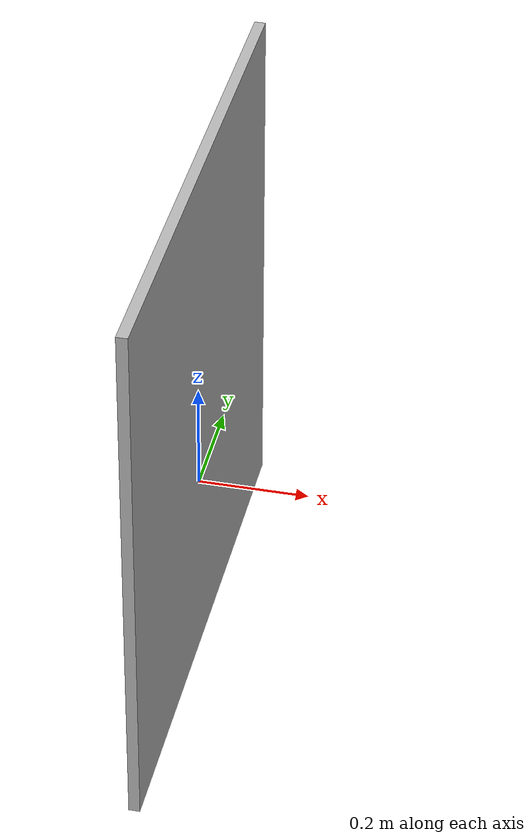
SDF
<?xml version="1.0"?>
<sdf version="1.6">
  <model name="person_sign_04">
    <static>true</static>
    <link name="sign">
      <visual name="visual">
        <pose>0 0 0.16 0 0 0</pose>
        <geometry>
          <box>
            <size>0.02 1.0 1.0</size>
          </box>
        </geometry>
        <material>
          <script>
            <uri>model://photo_signs/person_sign_04/materials/scripts</uri>
            <uri>model://photo_signs/person_sign_04/materials/textures</uri>
            <name>PhotoSign/person_sign_04</name>
          </script>
        </material>
      </visual>
    </link>
  </model>
</sdf>
